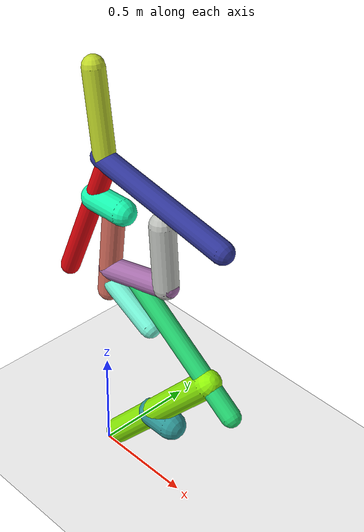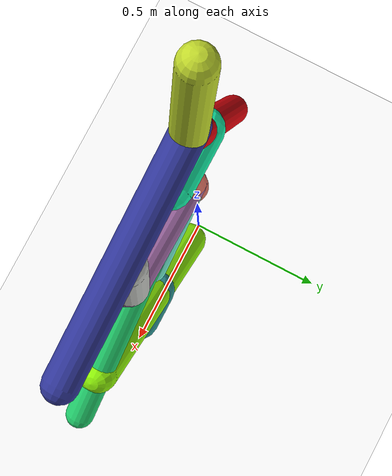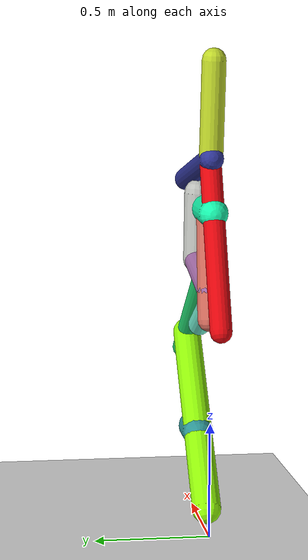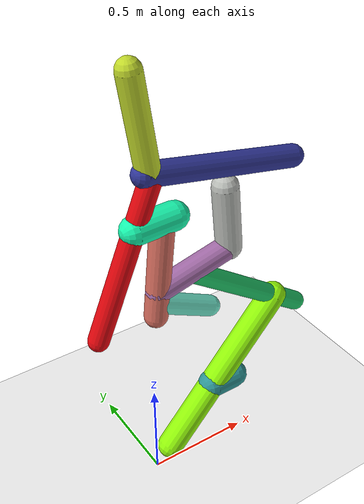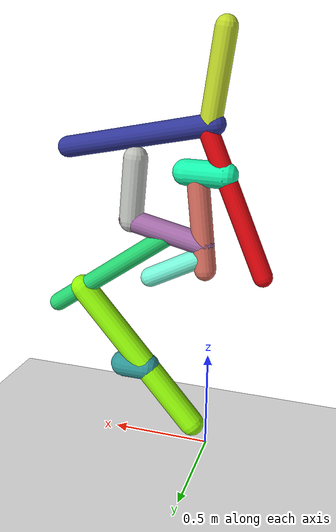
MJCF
<mujoco model="morphology">
  <option timestep="0.01"/>
  <default>
    <default class="/"/>
    <default class="0/"/>
    <default class="0/1/"/>
    <default class="0/1/2/"/>
    <default class="0/1/2/3/"/>
    <default class="0/1/2/3/4/"/>
    <default class="0/1/2/3/4/5/"/>
    <default class="0/1/2/3/4/6/"/>
    <default class="0/1/2/3/4/6/7/"/>
    <default class="0/1/2/3/4/6/7/8/"/>
    <default class="0/1/2/3/9/"/>
    <default class="0/10/"/>
  </default>
  <asset>
    <texture name="texplane" type="2d" builtin="checker" rgb1="0.10000000000000001 0.20000000000000001 0.29999999999999999" rgb2="0.20000000000000001 0.29999999999999999 0.40000000000000002" width="300" height="300"/>
    <material name="MatPlane" class="/" texture="texplane" texrepeat="20 20" specular="1" shininess="1" reflectance="0.5"/>
  </asset>
  <worldbody>
    <light name="//unnamed_light_0" class="/" directional="true" pos="0 0 1.5" dir="0 0 -1.3" cutoff="100" exponent="1" diffuse="1 1 1" specular="0.10000000000000001 0.10000000000000001 0.10000000000000001"/>
    <geom name="ground" class="/" type="plane" size="15 15 0.5" material="MatPlane" rgba="1 1 1 1"/>
    <site name="body" class="/" size="9.9999999999999995e-07 9.9999999999999995e-07 9.9999999999999995e-07" pos="0 0 1.6356416702270509"/>
    <body pos="0 0 1.6356416702270509" name="0/">
      <joint name="0/rootx/" class="/" type="slide" axis="1 0 0" limited="false" stiffness="0" armature="0" damping="0"/>
      <joint name="0/rootz/" class="/" type="slide" axis="0 0 1" limited="false" stiffness="0" armature="0" damping="0"/>
      <joint name="0/rooty/" class="/" type="hinge" axis="0 1 0" limited="false" stiffness="0" armature="0" damping="0"/>
      <geom name="0/geom" class="0/" type="capsule" contype="1" conaffinity="1" condim="3" size="0.051390107900365752" rgba="0.18759791028138295 0.21187461246368344 0.5964928670527434 1" friction="0.59999999999999998 0.10000000000000001 0.10000000000000001" fromto="0 0 0 0.72410554497196022 0 -0.12796381929551726"/>
      <site name="0/end0" class="0/" size="0.0050000000000000001" pos="0.72410554497196022 0 -0.12796381929551726"/>
      <site name="0/attach1" class="0/" size="9.9999999999999995e-07 9.9999999999999995e-07 9.9999999999999995e-07" pos="0.038483917812915214 0 -0.0068008719709308609"/>
      <body pos="0.038483917812915214 0 -0.0068008719709308609" name="0/1/">
        <geom name="0/1/geom" class="0/1/" type="capsule" contype="1" conaffinity="1" condim="3" size="0.046576968427550831" rgba="0.88605767997803331 0.021058987616139224 0.048894429166108755 1" friction="0.59999999999999998 0.10000000000000001 0.10000000000000001" fromto="0 0 0 -0.289114895238617 0 -0.68428907301717556"/>
        <site name="0/1/end1" class="0/1/" size="0.0050000000000000001" pos="-0.289114895238617 0 -0.68428907301717556"/>
        <site name="0/1/attach2" class="0/1/" size="9.9999999999999995e-07 9.9999999999999995e-07 9.9999999999999995e-07" pos="-0.092445643769228383 0 -0.21880416720525908"/>
        <body pos="-0.092445643769228383 0 -0.21880416720525908" name="0/1/2/">
          <geom name="0/1/2/geom" class="0/1/2/" type="capsule" contype="1" conaffinity="1" condim="3" size="0.062125196290987075" rgba="0.085295364016455877 0.96881159999643607 0.68209634199488167 1" friction="0.59999999999999998 0.10000000000000001 0.10000000000000001" fromto="0 0 0 0.18502270531776932 0 0.006253726629055989"/>
          <site name="0/1/2/end2" class="0/1/2/" size="0.0050000000000000001" pos="0.18502270531776932 0 0.006253726629055989"/>
          <site name="0/1/2/attach3" class="0/1/2/" size="9.9999999999999995e-07 9.9999999999999995e-07 9.9999999999999995e-07" pos="0.1295268962252592 0 0.0043779805225076952"/>
          <body pos="0.1295268962252592 0 0.0043779805225076952" name="0/1/2/3/">
            <joint name="0/1/2/3/joint/" class="0/1/2/" type="hinge" axis="0 1 0" limited="true" range="-43.397208831490985 43.397208831490985"/>
            <geom name="0/1/2/3/geom" class="0/1/2/3/" type="capsule" contype="1" conaffinity="1" condim="3" size="0.053083045863539222" rgba="0.82781422795465542 0.42294196225957248 0.36511742742052422 1" friction="0.59999999999999998 0.10000000000000001 0.10000000000000001" fromto="0 0 0 -0.048665467542949759 0 -0.46261337661916335"/>
            <site name="0/1/2/3/end3" class="0/1/2/3/" size="0.0050000000000000001" pos="-0.048665467542949759 0 -0.46261337661916335"/>
            <site name="0/1/2/3/attach4" class="0/1/2/3/" size="9.9999999999999995e-07 9.9999999999999995e-07 9.9999999999999995e-07" pos="-0.035498116192199267 0 -0.33744468561407598"/>
            <body pos="-0.035498116192199267 0 -0.33744468561407598" name="0/1/2/3/4/">
              <joint name="0/1/2/3/4/joint/" class="0/1/2/3/" type="hinge" axis="0 1 0" limited="true" range="-44.392935500854279 44.392935500854279"/>
              <geom name="0/1/2/3/4/geom" class="0/1/2/3/4/" type="capsule" contype="1" conaffinity="1" condim="3" size="0.054186087204529713" rgba="0.65500052584880275 0.43154348472170467 0.67464394975625319 1" friction="0.59999999999999998 0.10000000000000001 0.10000000000000001" fromto="0 0 0 0.37039834335244715 0 0.091779902179499384"/>
              <site name="0/1/2/3/4/end4" class="0/1/2/3/4/" size="0.0050000000000000001" pos="0.37039834335244715 0 0.091779902179499384"/>
              <site name="0/1/2/3/4/attach5" class="0/1/2/3/4/" size="9.9999999999999995e-07 9.9999999999999995e-07 9.9999999999999995e-07" pos="0.36375510647020592 0 0.090133794300914255"/>
              <body pos="0.36375510647020592 0 0.090133794300914255" name="0/1/2/3/4/5/">
                <joint name="0/1/2/3/4/5/joint/" class="0/1/2/3/4/" type="hinge" axis="0 1 0" limited="true" range="-39.989110634838745 39.989110634838745"/>
                <geom name="0/1/2/3/4/5/geom" class="0/1/2/3/4/5/" type="capsule" contype="1" conaffinity="1" condim="3" size="0.058826898351259808" rgba="0.73603092469544462 0.74666186166900828 0.72711080154308572 1" friction="0.59999999999999998 0.10000000000000001 0.10000000000000001" fromto="0 0 0 -0.027032605909788066 0 0.30121688147888559"/>
                <site name="0/1/2/3/4/5/end5" class="0/1/2/3/4/5/" size="0.0050000000000000001" pos="-0.027032605909788066 0 0.30121688147888559"/>
              </body>
              <site name="0/1/2/3/4/attach6" class="0/1/2/3/4/" size="9.9999999999999995e-07 9.9999999999999995e-07 9.9999999999999995e-07" pos="0.15779846060785047 0 0.039100410513670344"/>
              <body pos="0.15779846060785047 0 0.039100410513670344" name="0/1/2/3/4/6/">
                <joint name="0/1/2/3/4/6/joint/" class="0/1/2/3/4/" type="hinge" axis="0 1 0" limited="true" range="-33.862901660017499 33.862901660017499"/>
                <geom name="0/1/2/3/4/6/geom" class="0/1/2/3/4/6/" type="capsule" contype="1" conaffinity="1" condim="3" size="0.046521803548626672" rgba="0.13574112207016487 0.82622891175539437 0.43554437797716128 1" friction="0.59999999999999998 0.10000000000000001 0.10000000000000001" fromto="0 0 0 0.6216141702077953 0 -0.42721538687082339"/>
                <site name="0/1/2/3/4/6/end6" class="0/1/2/3/4/6/" size="0.0050000000000000001" pos="0.6216141702077953 0 -0.42721538687082339"/>
                <site name="0/1/2/3/4/6/attach7" class="0/1/2/3/4/6/" size="9.9999999999999995e-07 9.9999999999999995e-07 9.9999999999999995e-07" pos="0.47529251004622453 0 -0.32665322524472939"/>
                <body pos="0.47529251004622453 0 -0.32665322524472939" name="0/1/2/3/4/6/7/">
                  <geom name="0/1/2/3/4/6/7/geom" class="0/1/2/3/4/6/7/" type="capsule" contype="1" conaffinity="1" condim="3" size="0.064182940363416735" rgba="0.57214245106020778 0.97409726517593553 0.029912880346356308 1" friction="0.59999999999999998 0.10000000000000001 0.10000000000000001" fromto="0 0 0 -0.59407682962090447 0 -0.6894170964803783"/>
                  <site name="0/1/2/3/4/6/7/end7" class="0/1/2/3/4/6/7/" size="0.0050000000000000001" pos="-0.59407682962090447 0 -0.6894170964803783"/>
                  <site name="0/1/2/3/4/6/7/attach8" class="0/1/2/3/4/6/7/" size="9.9999999999999995e-07 9.9999999999999995e-07 9.9999999999999995e-07" pos="-0.34566280417459661 0 -0.40113641019695218"/>
                  <body pos="-0.34566280417459661 0 -0.40113641019695218" name="0/1/2/3/4/6/7/8/">
                    <joint name="0/1/2/3/4/6/7/8/joint/" class="0/1/2/3/4/6/7/" type="hinge" axis="0 1 0" limited="true" range="-63.645534828533556 63.645534828533556"/>
                    <geom name="0/1/2/3/4/6/7/8/geom" class="0/1/2/3/4/6/7/8/" type="capsule" contype="1" conaffinity="1" condim="3" size="0.069746331202485828" rgba="0.17936112083055888 0.58940077350798026 0.5887267526937634 1" friction="0.59999999999999998 0.10000000000000001 0.10000000000000001" fromto="0 0 0 0.12394968753855895 0 0.00012567751502312596"/>
                    <site name="0/1/2/3/4/6/7/8/end8" class="0/1/2/3/4/6/7/8/" size="0.0050000000000000001" pos="0.12394968753855895 0 0.00012567751502312596"/>
                  </body>
                </body>
              </body>
            </body>
            <site name="0/1/2/3/attach9" class="0/1/2/3/" size="9.9999999999999995e-07 9.9999999999999995e-07 9.9999999999999995e-07" pos="-0.041495376170805745 0 -0.39445457022512087"/>
            <body pos="-0.041495376170805745 0 -0.39445457022512087" name="0/1/2/3/9/">
              <geom name="0/1/2/3/9/geom" class="0/1/2/3/9/" type="capsule" contype="1" conaffinity="1" condim="3" size="0.049241202262526561" rgba="0.4575083788902814 0.94936543185194266 0.83388954181453712 1" friction="0.59999999999999998 0.10000000000000001 0.10000000000000001" fromto="0 0 0 0.27000512144616096 0 -0.13481234721664115"/>
              <site name="0/1/2/3/9/end9" class="0/1/2/3/9/" size="0.0050000000000000001" pos="0.27000512144616096 0 -0.13481234721664115"/>
            </body>
          </body>
        </body>
      </body>
      <site name="0/attach10" class="0/" size="9.9999999999999995e-07 9.9999999999999995e-07 9.9999999999999995e-07" pos="0.020691028952744057 0 -0.0036565154186877329"/>
      <body pos="0.020691028952744057 0 -0.0036565154186877329" name="0/10/">
        <joint name="0/10/joint/" class="0/" type="hinge" axis="0 1 0" limited="true" range="-39.984237390712281 39.984237390712281"/>
        <geom name="0/10/geom" class="0/10/" type="capsule" contype="1" conaffinity="1" condim="3" size="0.051056904246565449" rgba="0.75154838546666702 0.8433380071492701 0.16595761224609495 1" friction="0.59999999999999998 0.10000000000000001 0.10000000000000001" fromto="0 0 0 -0.059107869885365871 0 0.40867620820962935"/>
        <site name="0/10/end10" class="0/10/" size="0.0050000000000000001" pos="-0.059107869885365871 0 0.40867620820962935"/>
      </body>
      <camera name="0/side" class="0/" mode="trackcom" pos="0.40000000000000002 -4 0.20000000000000001" quat="0.70699999999999996 0.70699999999999996 0 0"/>
    </body>
  </worldbody>
  <actuator>
    <motor name="0/1/2/3/motor" class="0/1/2/3/" ctrllimited="true" ctrlrange="-1 1" gear="74" joint="0/1/2/3/joint/"/>
    <motor name="0/1/2/3/4/motor" class="0/1/2/3/4/" ctrllimited="true" ctrlrange="-1 1" gear="55" joint="0/1/2/3/4/joint/"/>
    <motor name="0/1/2/3/4/5/motor" class="0/1/2/3/4/5/" ctrllimited="true" ctrlrange="-1 1" gear="57" joint="0/1/2/3/4/5/joint/"/>
    <motor name="0/1/2/3/4/6/motor" class="0/1/2/3/4/6/" ctrllimited="true" ctrlrange="-1 1" gear="73" joint="0/1/2/3/4/6/joint/"/>
    <motor name="0/1/2/3/4/6/7/8/motor" class="0/1/2/3/4/6/7/8/" ctrllimited="true" ctrlrange="-1 1" gear="83" joint="0/1/2/3/4/6/7/8/joint/"/>
    <motor name="0/10/motor" class="0/10/" ctrllimited="true" ctrlrange="-1 1" gear="64" joint="0/10/joint/"/>
  </actuator>
  <sensor>
    <subtreelinvel name="velocity" body="0/"/>
  </sensor>
</mujoco>
